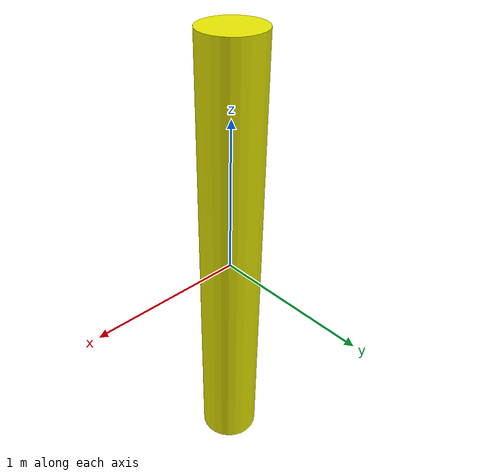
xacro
<?xml version="1.0"?>

<robot name="mobile_robot" xmlns:xacro="http://ros.org/wiki/xacro">
  <xacro:property name="pi" value="3.1415926535897931" />
  <xacro:property name="h" value="3" />
  <xacro:property name="mass" value="0.0001" />
  <xacro:property name="ixx" value="0.0001" />
  <xacro:property name="iyy" value="0.0001" />
  <xacro:property name="izz" value="0.0001" />
  <xacro:macro name="object_base_macro">
    <link name="base_link">
      <inertial>
        <!--mass value="1.477" /-->
        <mass value="${mass}"/>
        <origin xyz="0 0 0" />
        <inertia ixx="${ixx}" ixy="0.0" ixz="0.0" iyy="${iyy}" iyz="0.0" izz="${izz}" />
      </inertial>

      <visual>
        <origin rpy="0 0 0" xyz="0 0 0"/>
        <geometry>
          <cylinder length="${h}" radius="0.2"/>
        </geometry>
        <material name="red">
          <color rgba="0.9 0.9 0 1"/>
        </material>
      </visual>

      <collision>
        <origin rpy="0 0 0" xyz="0 0 0"/>
        <geometry>
          <cylinder length="${h}" radius="0.2"/>
        </geometry>
      </collision>
    </link>

    <!-- Plugins -->
    <gazebo>
      <!-- Quad Dynamics Plugin -->
      <plugin name="test" filename="libmrsl_mobile_object.so">
        <vy>1.0</vy>
    </plugin>
   </gazebo>

  </xacro:macro>
  <xacro:object_base_macro/>
</robot>
